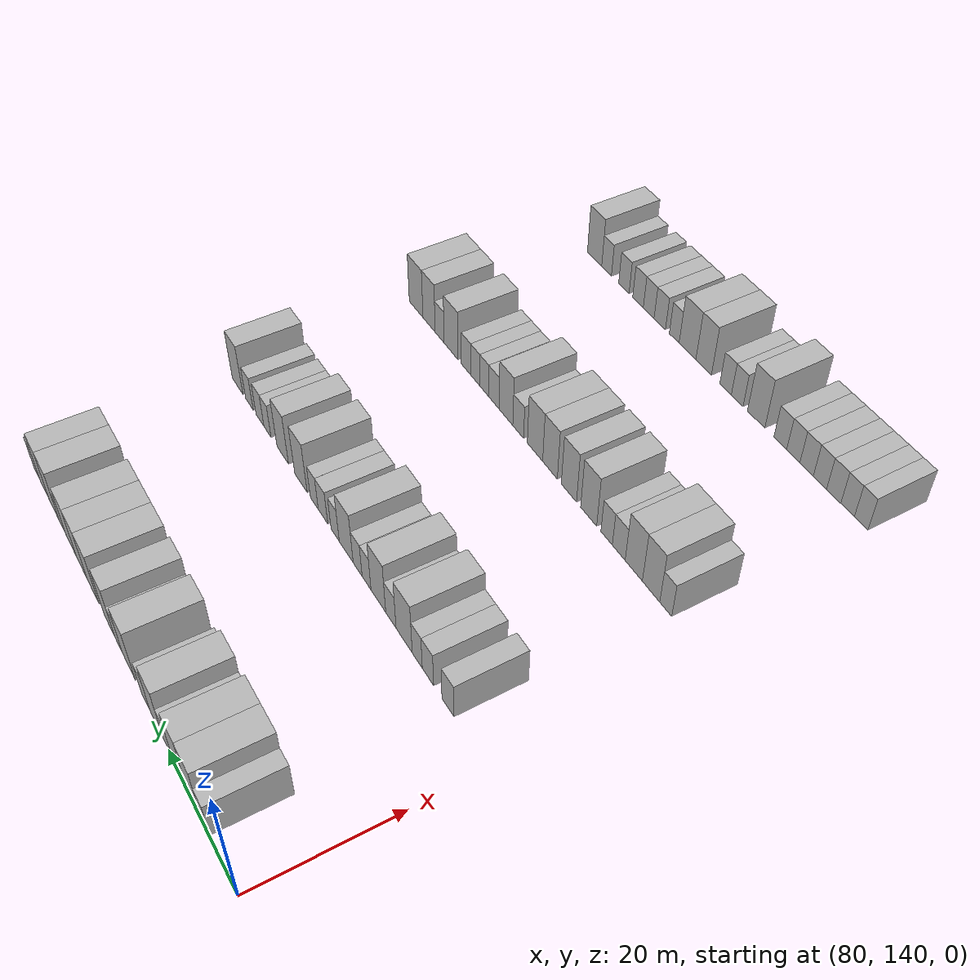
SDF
<sdf version="1.6">
 <world name="default">
  <model name="building_620">
   <static>1</static>
   <pose>85.0000 149.1270 0 0.000000 0.000000 0.000000</pose>
   <link name="link">
    <pose>0 0 3.00 0 0 0</pose>
    <collision name="collision"><geometry><box><size>10.0000 2.5076 6.0000</size></box></geometry></collision>
    <visual name="visual">
     <cast_shadows>0</cast_shadows>
     <geometry><box><size>10.0000 2.5076 6.0000</size></box></geometry>
     <material>
      <script>
       <uri>model://HANNAS_wall/materials/scripts</uri>
       <uri>model://HANNAS_wall/materials/textures</uri>
       <name>vrc/HANNAS_wall</name>
      </script>
     </material>
    </visual>
   </link>
  </model>
  <model name="building_621">
   <static>1</static>
   <pose>85.0000 152.5104 0 0.000000 0.000000 0.000000</pose>
   <link name="link">
    <pose>0 0 4.50 0 0 0</pose>
    <collision name="collision"><geometry><box><size>10.0000 4.2591 9.0000</size></box></geometry></collision>
    <visual name="visual">
     <cast_shadows>0</cast_shadows>
     <geometry><box><size>10.0000 4.2591 9.0000</size></box></geometry>
     <material>
      <script>
       <uri>model://HANNAS_wall/materials/scripts</uri>
       <uri>model://HANNAS_wall/materials/textures</uri>
       <name>vrc/HANNAS_wall</name>
      </script>
     </material>
    </visual>
   </link>
  </model>
  <model name="building_622">
   <static>1</static>
   <pose>85.0000 156.7633 0 0.000000 0.000000 0.000000</pose>
   <link name="link">
    <pose>0 0 4.50 0 0 0</pose>
    <collision name="collision"><geometry><box><size>10.0000 4.2467 9.0000</size></box></geometry></collision>
    <visual name="visual">
     <cast_shadows>0</cast_shadows>
     <geometry><box><size>10.0000 4.2467 9.0000</size></box></geometry>
     <material>
      <script>
       <uri>model://HANNAS_wall/materials/scripts</uri>
       <uri>model://HANNAS_wall/materials/textures</uri>
       <name>vrc/HANNAS_wall</name>
      </script>
     </material>
    </visual>
   </link>
  </model>
  <model name="building_623">
   <static>1</static>
   <pose>85.0000 160.2642 0 0.000000 0.000000 0.000000</pose>
   <link name="link">
    <pose>0 0 3.00 0 0 0</pose>
    <collision name="collision"><geometry><box><size>10.0000 2.7552 6.0000</size></box></geometry></collision>
    <visual name="visual">
     <cast_shadows>0</cast_shadows>
     <geometry><box><size>10.0000 2.7552 6.0000</size></box></geometry>
     <material>
      <script>
       <uri>model://HANNAS_wall/materials/scripts</uri>
       <uri>model://HANNAS_wall/materials/textures</uri>
       <name>vrc/HANNAS_wall</name>
      </script>
     </material>
    </visual>
   </link>
  </model>
  <model name="building_624">
   <static>1</static>
   <pose>85.0000 163.7320 0 0.000000 0.000000 0.000000</pose>
   <link name="link">
    <pose>0 0 4.50 0 0 0</pose>
    <collision name="collision"><geometry><box><size>10.0000 4.1804 9.0000</size></box></geometry></collision>
    <visual name="visual">
     <cast_shadows>0</cast_shadows>
     <geometry><box><size>10.0000 4.1804 9.0000</size></box></geometry>
     <material>
      <script>
       <uri>model://HANNAS_wall/materials/scripts</uri>
       <uri>model://HANNAS_wall/materials/textures</uri>
       <name>vrc/HANNAS_wall</name>
      </script>
     </material>
    </visual>
   </link>
  </model>
  <model name="building_625">
   <static>1</static>
   <pose>85.0000 167.2893 0 0.000000 0.000000 0.000000</pose>
   <link name="link">
    <pose>0 0 3.00 0 0 0</pose>
    <collision name="collision"><geometry><box><size>10.0000 2.9341 6.0000</size></box></geometry></collision>
    <visual name="visual">
     <cast_shadows>0</cast_shadows>
     <geometry><box><size>10.0000 2.9341 6.0000</size></box></geometry>
     <material>
      <script>
       <uri>model://HANNAS_wall/materials/scripts</uri>
       <uri>model://HANNAS_wall/materials/textures</uri>
       <name>vrc/HANNAS_wall</name>
      </script>
     </material>
    </visual>
   </link>
  </model>
  <model name="building_626">
   <static>1</static>
   <pose>85.0000 172.9179 0 0.000000 0.000000 0.000000</pose>
   <link name="link">
    <pose>0 0 4.50 0 0 0</pose>
    <collision name="collision"><geometry><box><size>10.0000 4.3229 9.0000</size></box></geometry></collision>
    <visual name="visual">
     <cast_shadows>0</cast_shadows>
     <geometry><box><size>10.0000 4.3229 9.0000</size></box></geometry>
     <material>
      <script>
       <uri>model://HANNAS_wall/materials/scripts</uri>
       <uri>model://HANNAS_wall/materials/textures</uri>
       <name>vrc/HANNAS_wall</name>
      </script>
     </material>
    </visual>
   </link>
  </model>
  <model name="building_627">
   <static>1</static>
   <pose>85.0000 176.4490 0 0.000000 0.000000 0.000000</pose>
   <link name="link">
    <pose>0 0 3.00 0 0 0</pose>
    <collision name="collision"><geometry><box><size>10.0000 2.7393 6.0000</size></box></geometry></collision>
    <visual name="visual">
     <cast_shadows>0</cast_shadows>
     <geometry><box><size>10.0000 2.7393 6.0000</size></box></geometry>
     <material>
      <script>
       <uri>model://HANNAS_wall/materials/scripts</uri>
       <uri>model://HANNAS_wall/materials/textures</uri>
       <name>vrc/HANNAS_wall</name>
      </script>
     </material>
    </visual>
   </link>
  </model>
  <model name="building_628">
   <static>1</static>
   <pose>85.0000 179.7100 0 0.000000 0.000000 0.000000</pose>
   <link name="link">
    <pose>0 0 4.50 0 0 0</pose>
    <collision name="collision"><geometry><box><size>10.0000 3.7828 9.0000</size></box></geometry></collision>
    <visual name="visual">
     <cast_shadows>0</cast_shadows>
     <geometry><box><size>10.0000 3.7828 9.0000</size></box></geometry>
     <material>
      <script>
       <uri>model://HANNAS_wall/materials/scripts</uri>
       <uri>model://HANNAS_wall/materials/textures</uri>
       <name>vrc/HANNAS_wall</name>
      </script>
     </material>
    </visual>
   </link>
  </model>
  <model name="building_629">
   <static>1</static>
   <pose>85.0000 185.8073 0 0.000000 0.000000 0.000000</pose>
   <link name="link">
    <pose>0 0 4.50 0 0 0</pose>
    <collision name="collision"><geometry><box><size>10.0000 4.4118 9.0000</size></box></geometry></collision>
    <visual name="visual">
     <cast_shadows>0</cast_shadows>
     <geometry><box><size>10.0000 4.4118 9.0000</size></box></geometry>
     <material>
      <script>
       <uri>model://HANNAS_wall/materials/scripts</uri>
       <uri>model://HANNAS_wall/materials/textures</uri>
       <name>vrc/HANNAS_wall</name>
      </script>
     </material>
    </visual>
   </link>
  </model>
  <model name="building_630">
   <static>1</static>
   <pose>85.0000 190.1214 0 0.000000 0.000000 0.000000</pose>
   <link name="link">
    <pose>0 0 4.50 0 0 0</pose>
    <collision name="collision"><geometry><box><size>10.0000 4.2162 9.0000</size></box></geometry></collision>
    <visual name="visual">
     <cast_shadows>0</cast_shadows>
     <geometry><box><size>10.0000 4.2162 9.0000</size></box></geometry>
     <material>
      <script>
       <uri>model://HANNAS_wall/materials/scripts</uri>
       <uri>model://HANNAS_wall/materials/textures</uri>
       <name>vrc/HANNAS_wall</name>
      </script>
     </material>
    </visual>
   </link>
  </model>
  <model name="building_631">
   <static>1</static>
   <pose>85.0000 194.3150 0 0.000000 0.000000 0.000000</pose>
   <link name="link">
    <pose>0 0 4.50 0 0 0</pose>
    <collision name="collision"><geometry><box><size>10.0000 4.1710 9.0000</size></box></geometry></collision>
    <visual name="visual">
     <cast_shadows>0</cast_shadows>
     <geometry><box><size>10.0000 4.1710 9.0000</size></box></geometry>
     <material>
      <script>
       <uri>model://HANNAS_wall/materials/scripts</uri>
       <uri>model://HANNAS_wall/materials/textures</uri>
       <name>vrc/HANNAS_wall</name>
      </script>
     </material>
    </visual>
   </link>
  </model>
  <model name="building_632">
   <static>1</static>
   <pose>85.0000 197.7149 0 0.000000 0.000000 0.000000</pose>
   <link name="link">
    <pose>0 0 3.00 0 0 0</pose>
    <collision name="collision"><geometry><box><size>10.0000 2.6288 6.0000</size></box></geometry></collision>
    <visual name="visual">
     <cast_shadows>0</cast_shadows>
     <geometry><box><size>10.0000 2.6288 6.0000</size></box></geometry>
     <material>
      <script>
       <uri>model://HANNAS_wall/materials/scripts</uri>
       <uri>model://HANNAS_wall/materials/textures</uri>
       <name>vrc/HANNAS_wall</name>
      </script>
     </material>
    </visual>
   </link>
  </model>
  <model name="building_633">
   <static>1</static>
   <pose>85.0000 201.2180 0 0.000000 0.000000 0.000000</pose>
   <link name="link">
    <pose>0 0 4.50 0 0 0</pose>
    <collision name="collision"><geometry><box><size>10.0000 4.3775 9.0000</size></box></geometry></collision>
    <visual name="visual">
     <cast_shadows>0</cast_shadows>
     <geometry><box><size>10.0000 4.3775 9.0000</size></box></geometry>
     <material>
      <script>
       <uri>model://HANNAS_wall/materials/scripts</uri>
       <uri>model://HANNAS_wall/materials/textures</uri>
       <name>vrc/HANNAS_wall</name>
      </script>
     </material>
    </visual>
   </link>
  </model>
  <model name="building_634">
   <static>1</static>
   <pose>85.0000 205.3237 0 0.000000 0.000000 0.000000</pose>
   <link name="link">
    <pose>0 0 4.50 0 0 0</pose>
    <collision name="collision"><geometry><box><size>10.0000 3.8339 9.0000</size></box></geometry></collision>
    <visual name="visual">
     <cast_shadows>0</cast_shadows>
     <geometry><box><size>10.0000 3.8339 9.0000</size></box></geometry>
     <material>
      <script>
       <uri>model://HANNAS_wall/materials/scripts</uri>
       <uri>model://HANNAS_wall/materials/textures</uri>
       <name>vrc/HANNAS_wall</name>
      </script>
     </material>
    </visual>
   </link>
  </model>
  <model name="building_635">
   <static>1</static>
   <pose>85.0000 208.5899 0 0.000000 0.000000 0.000000</pose>
   <link name="link">
    <pose>0 0 3.00 0 0 0</pose>
    <collision name="collision"><geometry><box><size>10.0000 2.6985 6.0000</size></box></geometry></collision>
    <visual name="visual">
     <cast_shadows>0</cast_shadows>
     <geometry><box><size>10.0000 2.6985 6.0000</size></box></geometry>
     <material>
      <script>
       <uri>model://HANNAS_wall/materials/scripts</uri>
       <uri>model://HANNAS_wall/materials/textures</uri>
       <name>vrc/HANNAS_wall</name>
      </script>
     </material>
    </visual>
   </link>
  </model>
  <model name="building_860">
   <static>1</static>
   <pose>115.0000 149.2882 0 0.000000 0.000000 0.000000</pose>
   <link name="link">
    <pose>0 0 3.00 0 0 0</pose>
    <collision name="collision"><geometry><box><size>10.0000 2.8849 6.0000</size></box></geometry></collision>
    <visual name="visual">
     <cast_shadows>0</cast_shadows>
     <geometry><box><size>10.0000 2.8849 6.0000</size></box></geometry>
     <material>
      <script>
       <uri>model://HANNAS_wall/materials/scripts</uri>
       <uri>model://HANNAS_wall/materials/textures</uri>
       <name>vrc/HANNAS_wall</name>
      </script>
     </material>
    </visual>
   </link>
  </model>
  <model name="building_861">
   <static>1</static>
   <pose>115.0000 154.1398 0 0.000000 0.000000 0.000000</pose>
   <link name="link">
    <pose>0 0 3.00 0 0 0</pose>
    <collision name="collision"><geometry><box><size>10.0000 2.8182 6.0000</size></box></geometry></collision>
    <visual name="visual">
     <cast_shadows>0</cast_shadows>
     <geometry><box><size>10.0000 2.8182 6.0000</size></box></geometry>
     <material>
      <script>
       <uri>model://HANNAS_wall/materials/scripts</uri>
       <uri>model://HANNAS_wall/materials/textures</uri>
       <name>vrc/HANNAS_wall</name>
      </script>
     </material>
    </visual>
   </link>
  </model>
  <model name="building_862">
   <static>1</static>
   <pose>115.0000 156.8066 0 0.000000 0.000000 0.000000</pose>
   <link name="link">
    <pose>0 0 3.00 0 0 0</pose>
    <collision name="collision"><geometry><box><size>10.0000 2.5155 6.0000</size></box></geometry></collision>
    <visual name="visual">
     <cast_shadows>0</cast_shadows>
     <geometry><box><size>10.0000 2.5155 6.0000</size></box></geometry>
     <material>
      <script>
       <uri>model://HANNAS_wall/materials/scripts</uri>
       <uri>model://HANNAS_wall/materials/textures</uri>
       <name>vrc/HANNAS_wall</name>
      </script>
     </material>
    </visual>
   </link>
  </model>
  <model name="building_863">
   <static>1</static>
   <pose>115.0000 160.1584 0 0.000000 0.000000 0.000000</pose>
   <link name="link">
    <pose>0 0 4.50 0 0 0</pose>
    <collision name="collision"><geometry><box><size>10.0000 4.1881 9.0000</size></box></geometry></collision>
    <visual name="visual">
     <cast_shadows>0</cast_shadows>
     <geometry><box><size>10.0000 4.1881 9.0000</size></box></geometry>
     <material>
      <script>
       <uri>model://HANNAS_wall/materials/scripts</uri>
       <uri>model://HANNAS_wall/materials/textures</uri>
       <name>vrc/HANNAS_wall</name>
      </script>
     </material>
    </visual>
   </link>
  </model>
  <model name="building_864">
   <static>1</static>
   <pose>115.0000 163.6179 0 0.000000 0.000000 0.000000</pose>
   <link name="link">
    <pose>0 0 3.00 0 0 0</pose>
    <collision name="collision"><geometry><box><size>10.0000 2.7309 6.0000</size></box></geometry></collision>
    <visual name="visual">
     <cast_shadows>0</cast_shadows>
     <geometry><box><size>10.0000 2.7309 6.0000</size></box></geometry>
     <material>
      <script>
       <uri>model://HANNAS_wall/materials/scripts</uri>
       <uri>model://HANNAS_wall/materials/textures</uri>
       <name>vrc/HANNAS_wall</name>
      </script>
     </material>
    </visual>
   </link>
  </model>
  <model name="building_865">
   <static>1</static>
   <pose>115.0000 166.9807 0 0.000000 0.000000 0.000000</pose>
   <link name="link">
    <pose>0 0 4.50 0 0 0</pose>
    <collision name="collision"><geometry><box><size>10.0000 3.9947 9.0000</size></box></geometry></collision>
    <visual name="visual">
     <cast_shadows>0</cast_shadows>
     <geometry><box><size>10.0000 3.9947 9.0000</size></box></geometry>
     <material>
      <script>
       <uri>model://HANNAS_wall/materials/scripts</uri>
       <uri>model://HANNAS_wall/materials/textures</uri>
       <name>vrc/HANNAS_wall</name>
      </script>
     </material>
    </visual>
   </link>
  </model>
  <model name="building_866">
   <static>1</static>
   <pose>115.0000 170.2140 0 0.000000 0.000000 0.000000</pose>
   <link name="link">
    <pose>0 0 3.00 0 0 0</pose>
    <collision name="collision"><geometry><box><size>10.0000 2.4719 6.0000</size></box></geometry></collision>
    <visual name="visual">
     <cast_shadows>0</cast_shadows>
     <geometry><box><size>10.0000 2.4719 6.0000</size></box></geometry>
     <material>
      <script>
       <uri>model://HANNAS_wall/materials/scripts</uri>
       <uri>model://HANNAS_wall/materials/textures</uri>
       <name>vrc/HANNAS_wall</name>
      </script>
     </material>
    </visual>
   </link>
  </model>
  <model name="building_867">
   <static>1</static>
   <pose>115.0000 172.7153 0 0.000000 0.000000 0.000000</pose>
   <link name="link">
    <pose>0 0 3.00 0 0 0</pose>
    <collision name="collision"><geometry><box><size>10.0000 2.5305 6.0000</size></box></geometry></collision>
    <visual name="visual">
     <cast_shadows>0</cast_shadows>
     <geometry><box><size>10.0000 2.5305 6.0000</size></box></geometry>
     <material>
      <script>
       <uri>model://HANNAS_wall/materials/scripts</uri>
       <uri>model://HANNAS_wall/materials/textures</uri>
       <name>vrc/HANNAS_wall</name>
      </script>
     </material>
    </visual>
   </link>
  </model>
  <model name="building_868">
   <static>1</static>
   <pose>115.0000 175.9908 0 0.000000 0.000000 0.000000</pose>
   <link name="link">
    <pose>0 0 4.50 0 0 0</pose>
    <collision name="collision"><geometry><box><size>10.0000 4.0206 9.0000</size></box></geometry></collision>
    <visual name="visual">
     <cast_shadows>0</cast_shadows>
     <geometry><box><size>10.0000 4.0206 9.0000</size></box></geometry>
     <material>
      <script>
       <uri>model://HANNAS_wall/materials/scripts</uri>
       <uri>model://HANNAS_wall/materials/textures</uri>
       <name>vrc/HANNAS_wall</name>
      </script>
     </material>
    </visual>
   </link>
  </model>
  <model name="building_869">
   <static>1</static>
   <pose>115.0000 179.2040 0 0.000000 0.000000 0.000000</pose>
   <link name="link">
    <pose>0 0 3.00 0 0 0</pose>
    <collision name="collision"><geometry><box><size>10.0000 2.4058 6.0000</size></box></geometry></collision>
    <visual name="visual">
     <cast_shadows>0</cast_shadows>
     <geometry><box><size>10.0000 2.4058 6.0000</size></box></geometry>
     <material>
      <script>
       <uri>model://HANNAS_wall/materials/scripts</uri>
       <uri>model://HANNAS_wall/materials/textures</uri>
       <name>vrc/HANNAS_wall</name>
      </script>
     </material>
    </visual>
   </link>
  </model>
  <model name="building_870">
   <static>1</static>
   <pose>115.0000 182.8439 0 0.000000 0.000000 0.000000</pose>
   <link name="link">
    <pose>0 0 3.00 0 0 0</pose>
    <collision name="collision"><geometry><box><size>10.0000 2.8740 6.0000</size></box></geometry></collision>
    <visual name="visual">
     <cast_shadows>0</cast_shadows>
     <geometry><box><size>10.0000 2.8740 6.0000</size></box></geometry>
     <material>
      <script>
       <uri>model://HANNAS_wall/materials/scripts</uri>
       <uri>model://HANNAS_wall/materials/textures</uri>
       <name>vrc/HANNAS_wall</name>
      </script>
     </material>
    </visual>
   </link>
  </model>
  <model name="building_871">
   <static>1</static>
   <pose>115.0000 185.4899 0 0.000000 0.000000 0.000000</pose>
   <link name="link">
    <pose>0 0 3.00 0 0 0</pose>
    <collision name="collision"><geometry><box><size>10.0000 2.4179 6.0000</size></box></geometry></collision>
    <visual name="visual">
     <cast_shadows>0</cast_shadows>
     <geometry><box><size>10.0000 2.4179 6.0000</size></box></geometry>
     <material>
      <script>
       <uri>model://HANNAS_wall/materials/scripts</uri>
       <uri>model://HANNAS_wall/materials/textures</uri>
       <name>vrc/HANNAS_wall</name>
      </script>
     </material>
    </visual>
   </link>
  </model>
  <model name="building_872">
   <static>1</static>
   <pose>115.0000 189.6766 0 0.000000 0.000000 0.000000</pose>
   <link name="link">
    <pose>0 0 4.50 0 0 0</pose>
    <collision name="collision"><geometry><box><size>10.0000 3.9555 9.0000</size></box></geometry></collision>
    <visual name="visual">
     <cast_shadows>0</cast_shadows>
     <geometry><box><size>10.0000 3.9555 9.0000</size></box></geometry>
     <material>
      <script>
       <uri>model://HANNAS_wall/materials/scripts</uri>
       <uri>model://HANNAS_wall/materials/textures</uri>
       <name>vrc/HANNAS_wall</name>
      </script>
     </material>
    </visual>
   </link>
  </model>
  <model name="building_873">
   <static>1</static>
   <pose>115.0000 195.5539 0 0.000000 0.000000 0.000000</pose>
   <link name="link">
    <pose>0 0 4.50 0 0 0</pose>
    <collision name="collision"><geometry><box><size>10.0000 3.7991 9.0000</size></box></geometry></collision>
    <visual name="visual">
     <cast_shadows>0</cast_shadows>
     <geometry><box><size>10.0000 3.7991 9.0000</size></box></geometry>
     <material>
      <script>
       <uri>model://HANNAS_wall/materials/scripts</uri>
       <uri>model://HANNAS_wall/materials/textures</uri>
       <name>vrc/HANNAS_wall</name>
      </script>
     </material>
    </visual>
   </link>
  </model>
  <model name="building_874">
   <static>1</static>
   <pose>115.0000 200.6621 0 0.000000 0.000000 0.000000</pose>
   <link name="link">
    <pose>0 0 3.00 0 0 0</pose>
    <collision name="collision"><geometry><box><size>10.0000 2.4171 6.0000</size></box></geometry></collision>
    <visual name="visual">
     <cast_shadows>0</cast_shadows>
     <geometry><box><size>10.0000 2.4171 6.0000</size></box></geometry>
     <material>
      <script>
       <uri>model://HANNAS_wall/materials/scripts</uri>
       <uri>model://HANNAS_wall/materials/textures</uri>
       <name>vrc/HANNAS_wall</name>
      </script>
     </material>
    </visual>
   </link>
  </model>
  <model name="building_875">
   <static>1</static>
   <pose>115.0000 203.2262 0 0.000000 0.000000 0.000000</pose>
   <link name="link">
    <pose>0 0 3.00 0 0 0</pose>
    <collision name="collision"><geometry><box><size>10.0000 2.7111 6.0000</size></box></geometry></collision>
    <visual name="visual">
     <cast_shadows>0</cast_shadows>
     <geometry><box><size>10.0000 2.7111 6.0000</size></box></geometry>
     <material>
      <script>
       <uri>model://HANNAS_wall/materials/scripts</uri>
       <uri>model://HANNAS_wall/materials/textures</uri>
       <name>vrc/HANNAS_wall</name>
      </script>
     </material>
    </visual>
   </link>
  </model>
  <model name="building_876">
   <static>1</static>
   <pose>115.0000 206.9170 0 0.000000 0.000000 0.000000</pose>
   <link name="link">
    <pose>0 0 3.00 0 0 0</pose>
    <collision name="collision"><geometry><box><size>10.0000 2.6705 6.0000</size></box></geometry></collision>
    <visual name="visual">
     <cast_shadows>0</cast_shadows>
     <geometry><box><size>10.0000 2.6705 6.0000</size></box></geometry>
     <material>
      <script>
       <uri>model://HANNAS_wall/materials/scripts</uri>
       <uri>model://HANNAS_wall/materials/textures</uri>
       <name>vrc/HANNAS_wall</name>
      </script>
     </material>
    </visual>
   </link>
  </model>
  <model name="building_877">
   <static>1</static>
   <pose>115.0000 211.1605 0 0.000000 0.000000 0.000000</pose>
   <link name="link">
    <pose>0 0 4.50 0 0 0</pose>
    <collision name="collision"><geometry><box><size>10.0000 3.8165 9.0000</size></box></geometry></collision>
    <visual name="visual">
     <cast_shadows>0</cast_shadows>
     <geometry><box><size>10.0000 3.8165 9.0000</size></box></geometry>
     <material>
      <script>
       <uri>model://HANNAS_wall/materials/scripts</uri>
       <uri>model://HANNAS_wall/materials/textures</uri>
       <name>vrc/HANNAS_wall</name>
      </script>
     </material>
    </visual>
   </link>
  </model>
  <model name="building_1081">
   <static>1</static>
   <pose>145.0000 148.4173 0 0.000000 0.000000 0.000000</pose>
   <link name="link">
    <pose>0 0 3.00 0 0 0</pose>
    <collision name="collision"><geometry><box><size>10.0000 2.5386 6.0000</size></box></geometry></collision>
    <visual name="visual">
     <cast_shadows>0</cast_shadows>
     <geometry><box><size>10.0000 2.5386 6.0000</size></box></geometry>
     <material>
      <script>
       <uri>model://HANNAS_wall/materials/scripts</uri>
       <uri>model://HANNAS_wall/materials/textures</uri>
       <name>vrc/HANNAS_wall</name>
      </script>
     </material>
    </visual>
   </link>
  </model>
  <model name="building_1082">
   <static>1</static>
   <pose>145.0000 151.5615 0 0.000000 0.000000 0.000000</pose>
   <link name="link">
    <pose>0 0 4.50 0 0 0</pose>
    <collision name="collision"><geometry><box><size>10.0000 3.7497 9.0000</size></box></geometry></collision>
    <visual name="visual">
     <cast_shadows>0</cast_shadows>
     <geometry><box><size>10.0000 3.7497 9.0000</size></box></geometry>
     <material>
      <script>
       <uri>model://HANNAS_wall/materials/scripts</uri>
       <uri>model://HANNAS_wall/materials/textures</uri>
       <name>vrc/HANNAS_wall</name>
      </script>
     </material>
    </visual>
   </link>
  </model>
  <model name="building_1083">
   <static>1</static>
   <pose>145.0000 155.3488 0 0.000000 0.000000 0.000000</pose>
   <link name="link">
    <pose>0 0 4.50 0 0 0</pose>
    <collision name="collision"><geometry><box><size>10.0000 3.8248 9.0000</size></box></geometry></collision>
    <visual name="visual">
     <cast_shadows>0</cast_shadows>
     <geometry><box><size>10.0000 3.8248 9.0000</size></box></geometry>
     <material>
      <script>
       <uri>model://HANNAS_wall/materials/scripts</uri>
       <uri>model://HANNAS_wall/materials/textures</uri>
       <name>vrc/HANNAS_wall</name>
      </script>
     </material>
    </visual>
   </link>
  </model>
  <model name="building_1084">
   <static>1</static>
   <pose>145.0000 158.7180 0 0.000000 0.000000 0.000000</pose>
   <link name="link">
    <pose>0 0 3.00 0 0 0</pose>
    <collision name="collision"><geometry><box><size>10.0000 2.9135 6.0000</size></box></geometry></collision>
    <visual name="visual">
     <cast_shadows>0</cast_shadows>
     <geometry><box><size>10.0000 2.9135 6.0000</size></box></geometry>
     <material>
      <script>
       <uri>model://HANNAS_wall/materials/scripts</uri>
       <uri>model://HANNAS_wall/materials/textures</uri>
       <name>vrc/HANNAS_wall</name>
      </script>
     </material>
    </visual>
   </link>
  </model>
  <model name="building_1085">
   <static>1</static>
   <pose>145.0000 161.4958 0 0.000000 0.000000 0.000000</pose>
   <link name="link">
    <pose>0 0 3.00 0 0 0</pose>
    <collision name="collision"><geometry><box><size>10.0000 2.6422 6.0000</size></box></geometry></collision>
    <visual name="visual">
     <cast_shadows>0</cast_shadows>
     <geometry><box><size>10.0000 2.6422 6.0000</size></box></geometry>
     <material>
      <script>
       <uri>model://HANNAS_wall/materials/scripts</uri>
       <uri>model://HANNAS_wall/materials/textures</uri>
       <name>vrc/HANNAS_wall</name>
      </script>
     </material>
    </visual>
   </link>
  </model>
  <model name="building_1086">
   <static>1</static>
   <pose>145.0000 165.7236 0 0.000000 0.000000 0.000000</pose>
   <link name="link">
    <pose>0 0 4.50 0 0 0</pose>
    <collision name="collision"><geometry><box><size>10.0000 3.8134 9.0000</size></box></geometry></collision>
    <visual name="visual">
     <cast_shadows>0</cast_shadows>
     <geometry><box><size>10.0000 3.8134 9.0000</size></box></geometry>
     <material>
      <script>
       <uri>model://HANNAS_wall/materials/scripts</uri>
       <uri>model://HANNAS_wall/materials/textures</uri>
       <name>vrc/HANNAS_wall</name>
      </script>
     </material>
    </visual>
   </link>
  </model>
  <model name="building_1087">
   <static>1</static>
   <pose>145.0000 170.4979 0 0.000000 0.000000 0.000000</pose>
   <link name="link">
    <pose>0 0 4.50 0 0 0</pose>
    <collision name="collision"><geometry><box><size>10.0000 3.7352 9.0000</size></box></geometry></collision>
    <visual name="visual">
     <cast_shadows>0</cast_shadows>
     <geometry><box><size>10.0000 3.7352 9.0000</size></box></geometry>
     <material>
      <script>
       <uri>model://HANNAS_wall/materials/scripts</uri>
       <uri>model://HANNAS_wall/materials/textures</uri>
       <name>vrc/HANNAS_wall</name>
      </script>
     </material>
    </visual>
   </link>
  </model>
  <model name="building_1088">
   <static>1</static>
   <pose>145.0000 175.2253 0 0.000000 0.000000 0.000000</pose>
   <link name="link">
    <pose>0 0 4.50 0 0 0</pose>
    <collision name="collision"><geometry><box><size>10.0000 3.7195 9.0000</size></box></geometry></collision>
    <visual name="visual">
     <cast_shadows>0</cast_shadows>
     <geometry><box><size>10.0000 3.7195 9.0000</size></box></geometry>
     <material>
      <script>
       <uri>model://HANNAS_wall/materials/scripts</uri>
       <uri>model://HANNAS_wall/materials/textures</uri>
       <name>vrc/HANNAS_wall</name>
      </script>
     </material>
    </visual>
   </link>
  </model>
  <model name="building_1089">
   <static>1</static>
   <pose>145.0000 179.0770 0 0.000000 0.000000 0.000000</pose>
   <link name="link">
    <pose>0 0 4.50 0 0 0</pose>
    <collision name="collision"><geometry><box><size>10.0000 3.9839 9.0000</size></box></geometry></collision>
    <visual name="visual">
     <cast_shadows>0</cast_shadows>
     <geometry><box><size>10.0000 3.9839 9.0000</size></box></geometry>
     <material>
      <script>
       <uri>model://HANNAS_wall/materials/scripts</uri>
       <uri>model://HANNAS_wall/materials/textures</uri>
       <name>vrc/HANNAS_wall</name>
      </script>
     </material>
    </visual>
   </link>
  </model>
  <model name="building_1090">
   <static>1</static>
   <pose>145.0000 183.5086 0 0.000000 0.000000 0.000000</pose>
   <link name="link">
    <pose>0 0 3.00 0 0 0</pose>
    <collision name="collision"><geometry><box><size>10.0000 2.8792 6.0000</size></box></geometry></collision>
    <visual name="visual">
     <cast_shadows>0</cast_shadows>
     <geometry><box><size>10.0000 2.8792 6.0000</size></box></geometry>
     <material>
      <script>
       <uri>model://HANNAS_wall/materials/scripts</uri>
       <uri>model://HANNAS_wall/materials/textures</uri>
       <name>vrc/HANNAS_wall</name>
      </script>
     </material>
    </visual>
   </link>
  </model>
  <model name="building_1091">
   <static>1</static>
   <pose>145.0000 186.8395 0 0.000000 0.000000 0.000000</pose>
   <link name="link">
    <pose>0 0 4.50 0 0 0</pose>
    <collision name="collision"><geometry><box><size>10.0000 3.7826 9.0000</size></box></geometry></collision>
    <visual name="visual">
     <cast_shadows>0</cast_shadows>
     <geometry><box><size>10.0000 3.7826 9.0000</size></box></geometry>
     <material>
      <script>
       <uri>model://HANNAS_wall/materials/scripts</uri>
       <uri>model://HANNAS_wall/materials/textures</uri>
       <name>vrc/HANNAS_wall</name>
      </script>
     </material>
    </visual>
   </link>
  </model>
  <model name="building_1092">
   <static>1</static>
   <pose>145.0000 190.1823 0 0.000000 0.000000 0.000000</pose>
   <link name="link">
    <pose>0 0 3.00 0 0 0</pose>
    <collision name="collision"><geometry><box><size>10.0000 2.9030 6.0000</size></box></geometry></collision>
    <visual name="visual">
     <cast_shadows>0</cast_shadows>
     <geometry><box><size>10.0000 2.9030 6.0000</size></box></geometry>
     <material>
      <script>
       <uri>model://HANNAS_wall/materials/scripts</uri>
       <uri>model://HANNAS_wall/materials/textures</uri>
       <name>vrc/HANNAS_wall</name>
      </script>
     </material>
    </visual>
   </link>
  </model>
  <model name="building_1093">
   <static>1</static>
   <pose>145.0000 192.9009 0 0.000000 0.000000 0.000000</pose>
   <link name="link">
    <pose>0 0 3.00 0 0 0</pose>
    <collision name="collision"><geometry><box><size>10.0000 2.5343 6.0000</size></box></geometry></collision>
    <visual name="visual">
     <cast_shadows>0</cast_shadows>
     <geometry><box><size>10.0000 2.5343 6.0000</size></box></geometry>
     <material>
      <script>
       <uri>model://HANNAS_wall/materials/scripts</uri>
       <uri>model://HANNAS_wall/materials/textures</uri>
       <name>vrc/HANNAS_wall</name>
      </script>
     </material>
    </visual>
   </link>
  </model>
  <model name="building_1094">
   <static>1</static>
   <pose>145.0000 195.4514 0 0.000000 0.000000 0.000000</pose>
   <link name="link">
    <pose>0 0 3.00 0 0 0</pose>
    <collision name="collision"><geometry><box><size>10.0000 2.5667 6.0000</size></box></geometry></collision>
    <visual name="visual">
     <cast_shadows>0</cast_shadows>
     <geometry><box><size>10.0000 2.5667 6.0000</size></box></geometry>
     <material>
      <script>
       <uri>model://HANNAS_wall/materials/scripts</uri>
       <uri>model://HANNAS_wall/materials/textures</uri>
       <name>vrc/HANNAS_wall</name>
      </script>
     </material>
    </visual>
   </link>
  </model>
  <model name="building_1095">
   <static>1</static>
   <pose>145.0000 198.1159 0 0.000000 0.000000 0.000000</pose>
   <link name="link">
    <pose>0 0 3.00 0 0 0</pose>
    <collision name="collision"><geometry><box><size>10.0000 2.7623 6.0000</size></box></geometry></collision>
    <visual name="visual">
     <cast_shadows>0</cast_shadows>
     <geometry><box><size>10.0000 2.7623 6.0000</size></box></geometry>
     <material>
      <script>
       <uri>model://HANNAS_wall/materials/scripts</uri>
       <uri>model://HANNAS_wall/materials/textures</uri>
       <name>vrc/HANNAS_wall</name>
      </script>
     </material>
    </visual>
   </link>
  </model>
  <model name="building_1096">
   <static>1</static>
   <pose>145.0000 202.5630 0 0.000000 0.000000 0.000000</pose>
   <link name="link">
    <pose>0 0 4.50 0 0 0</pose>
    <collision name="collision"><geometry><box><size>10.0000 4.1319 9.0000</size></box></geometry></collision>
    <visual name="visual">
     <cast_shadows>0</cast_shadows>
     <geometry><box><size>10.0000 4.1319 9.0000</size></box></geometry>
     <material>
      <script>
       <uri>model://HANNAS_wall/materials/scripts</uri>
       <uri>model://HANNAS_wall/materials/textures</uri>
       <name>vrc/HANNAS_wall</name>
      </script>
     </material>
    </visual>
   </link>
  </model>
  <model name="building_1097">
   <static>1</static>
   <pose>145.0000 206.0150 0 0.000000 0.000000 0.000000</pose>
   <link name="link">
    <pose>0 0 3.00 0 0 0</pose>
    <collision name="collision"><geometry><box><size>10.0000 2.7720 6.0000</size></box></geometry></collision>
    <visual name="visual">
     <cast_shadows>0</cast_shadows>
     <geometry><box><size>10.0000 2.7720 6.0000</size></box></geometry>
     <material>
      <script>
       <uri>model://HANNAS_wall/materials/scripts</uri>
       <uri>model://HANNAS_wall/materials/textures</uri>
       <name>vrc/HANNAS_wall</name>
      </script>
     </material>
    </visual>
   </link>
  </model>
  <model name="building_1098">
   <static>1</static>
   <pose>145.0000 209.3118 0 0.000000 0.000000 0.000000</pose>
   <link name="link">
    <pose>0 0 4.50 0 0 0</pose>
    <collision name="collision"><geometry><box><size>10.0000 3.8217 9.0000</size></box></geometry></collision>
    <visual name="visual">
     <cast_shadows>0</cast_shadows>
     <geometry><box><size>10.0000 3.8217 9.0000</size></box></geometry>
     <material>
      <script>
       <uri>model://HANNAS_wall/materials/scripts</uri>
       <uri>model://HANNAS_wall/materials/textures</uri>
       <name>vrc/HANNAS_wall</name>
      </script>
     </material>
    </visual>
   </link>
  </model>
  <model name="building_1099">
   <static>1</static>
   <pose>145.0000 213.4184 0 0.000000 0.000000 0.000000</pose>
   <link name="link">
    <pose>0 0 4.50 0 0 0</pose>
    <collision name="collision"><geometry><box><size>10.0000 4.3914 9.0000</size></box></geometry></collision>
    <visual name="visual">
     <cast_shadows>0</cast_shadows>
     <geometry><box><size>10.0000 4.3914 9.0000</size></box></geometry>
     <material>
      <script>
       <uri>model://HANNAS_wall/materials/scripts</uri>
       <uri>model://HANNAS_wall/materials/textures</uri>
       <name>vrc/HANNAS_wall</name>
      </script>
     </material>
    </visual>
   </link>
  </model>
  <model name="building_1296">
   <static>1</static>
   <pose>175.0000 147.2156 0 0.000000 0.000000 0.000000</pose>
   <link name="link">
    <pose>0 0 3.00 0 0 0</pose>
    <collision name="collision"><geometry><box><size>10.0000 2.6299 6.0000</size></box></geometry></collision>
    <visual name="visual">
     <cast_shadows>0</cast_shadows>
     <geometry><box><size>10.0000 2.6299 6.0000</size></box></geometry>
     <material>
      <script>
       <uri>model://HANNAS_wall/materials/scripts</uri>
       <uri>model://HANNAS_wall/materials/textures</uri>
       <name>vrc/HANNAS_wall</name>
      </script>
     </material>
    </visual>
   </link>
  </model>
  <model name="building_1297">
   <static>1</static>
   <pose>175.0000 149.8735 0 0.000000 0.000000 0.000000</pose>
   <link name="link">
    <pose>0 0 3.00 0 0 0</pose>
    <collision name="collision"><geometry><box><size>10.0000 2.6858 6.0000</size></box></geometry></collision>
    <visual name="visual">
     <cast_shadows>0</cast_shadows>
     <geometry><box><size>10.0000 2.6858 6.0000</size></box></geometry>
     <material>
      <script>
       <uri>model://HANNAS_wall/materials/scripts</uri>
       <uri>model://HANNAS_wall/materials/textures</uri>
       <name>vrc/HANNAS_wall</name>
      </script>
     </material>
    </visual>
   </link>
  </model>
  <model name="building_1298">
   <static>1</static>
   <pose>175.0000 152.6501 0 0.000000 0.000000 0.000000</pose>
   <link name="link">
    <pose>0 0 3.00 0 0 0</pose>
    <collision name="collision"><geometry><box><size>10.0000 2.8673 6.0000</size></box></geometry></collision>
    <visual name="visual">
     <cast_shadows>0</cast_shadows>
     <geometry><box><size>10.0000 2.8673 6.0000</size></box></geometry>
     <material>
      <script>
       <uri>model://HANNAS_wall/materials/scripts</uri>
       <uri>model://HANNAS_wall/materials/textures</uri>
       <name>vrc/HANNAS_wall</name>
      </script>
     </material>
    </visual>
   </link>
  </model>
  <model name="building_1299">
   <static>1</static>
   <pose>175.0000 155.4488 0 0.000000 0.000000 0.000000</pose>
   <link name="link">
    <pose>0 0 3.00 0 0 0</pose>
    <collision name="collision"><geometry><box><size>10.0000 2.7303 6.0000</size></box></geometry></collision>
    <visual name="visual">
     <cast_shadows>0</cast_shadows>
     <geometry><box><size>10.0000 2.7303 6.0000</size></box></geometry>
     <material>
      <script>
       <uri>model://HANNAS_wall/materials/scripts</uri>
       <uri>model://HANNAS_wall/materials/textures</uri>
       <name>vrc/HANNAS_wall</name>
      </script>
     </material>
    </visual>
   </link>
  </model>
  <model name="building_1300">
   <static>1</static>
   <pose>175.0000 158.2220 0 0.000000 0.000000 0.000000</pose>
   <link name="link">
    <pose>0 0 3.00 0 0 0</pose>
    <collision name="collision"><geometry><box><size>10.0000 2.8161 6.0000</size></box></geometry></collision>
    <visual name="visual">
     <cast_shadows>0</cast_shadows>
     <geometry><box><size>10.0000 2.8161 6.0000</size></box></geometry>
     <material>
      <script>
       <uri>model://HANNAS_wall/materials/scripts</uri>
       <uri>model://HANNAS_wall/materials/textures</uri>
       <name>vrc/HANNAS_wall</name>
      </script>
     </material>
    </visual>
   </link>
  </model>
  <model name="building_1301">
   <static>1</static>
   <pose>175.0000 161.0381 0 0.000000 0.000000 0.000000</pose>
   <link name="link">
    <pose>0 0 3.00 0 0 0</pose>
    <collision name="collision"><geometry><box><size>10.0000 2.8159 6.0000</size></box></geometry></collision>
    <visual name="visual">
     <cast_shadows>0</cast_shadows>
     <geometry><box><size>10.0000 2.8159 6.0000</size></box></geometry>
     <material>
      <script>
       <uri>model://HANNAS_wall/materials/scripts</uri>
       <uri>model://HANNAS_wall/materials/textures</uri>
       <name>vrc/HANNAS_wall</name>
      </script>
     </material>
    </visual>
   </link>
  </model>
  <model name="building_1302">
   <static>1</static>
   <pose>175.0000 163.8328 0 0.000000 0.000000 0.000000</pose>
   <link name="link">
    <pose>0 0 3.00 0 0 0</pose>
    <collision name="collision"><geometry><box><size>10.0000 2.7735 6.0000</size></box></geometry></collision>
    <visual name="visual">
     <cast_shadows>0</cast_shadows>
     <geometry><box><size>10.0000 2.7735 6.0000</size></box></geometry>
     <material>
      <script>
       <uri>model://HANNAS_wall/materials/scripts</uri>
       <uri>model://HANNAS_wall/materials/textures</uri>
       <name>vrc/HANNAS_wall</name>
      </script>
     </material>
    </visual>
   </link>
  </model>
  <model name="building_1303">
   <static>1</static>
   <pose>175.0000 169.1736 0 0.000000 0.000000 0.000000</pose>
   <link name="link">
    <pose>0 0 4.50 0 0 0</pose>
    <collision name="collision"><geometry><box><size>10.0000 3.9081 9.0000</size></box></geometry></collision>
    <visual name="visual">
     <cast_shadows>0</cast_shadows>
     <geometry><box><size>10.0000 3.9081 9.0000</size></box></geometry>
     <material>
      <script>
       <uri>model://HANNAS_wall/materials/scripts</uri>
       <uri>model://HANNAS_wall/materials/textures</uri>
       <name>vrc/HANNAS_wall</name>
      </script>
     </material>
    </visual>
   </link>
  </model>
  <model name="building_1304">
   <static>1</static>
   <pose>175.0000 173.4817 0 0.000000 0.000000 0.000000</pose>
   <link name="link">
    <pose>0 0 3.00 0 0 0</pose>
    <collision name="collision"><geometry><box><size>10.0000 2.7082 6.0000</size></box></geometry></collision>
    <visual name="visual">
     <cast_shadows>0</cast_shadows>
     <geometry><box><size>10.0000 2.7082 6.0000</size></box></geometry>
     <material>
      <script>
       <uri>model://HANNAS_wall/materials/scripts</uri>
       <uri>model://HANNAS_wall/materials/textures</uri>
       <name>vrc/HANNAS_wall</name>
      </script>
     </material>
    </visual>
   </link>
  </model>
  <model name="building_1305">
   <static>1</static>
   <pose>175.0000 176.1846 0 0.000000 0.000000 0.000000</pose>
   <link name="link">
    <pose>0 0 3.00 0 0 0</pose>
    <collision name="collision"><geometry><box><size>10.0000 2.6976 6.0000</size></box></geometry></collision>
    <visual name="visual">
     <cast_shadows>0</cast_shadows>
     <geometry><box><size>10.0000 2.6976 6.0000</size></box></geometry>
     <material>
      <script>
       <uri>model://HANNAS_wall/materials/scripts</uri>
       <uri>model://HANNAS_wall/materials/textures</uri>
       <name>vrc/HANNAS_wall</name>
      </script>
     </material>
    </visual>
   </link>
  </model>
  <model name="building_1306">
   <static>1</static>
   <pose>175.0000 181.4201 0 0.000000 0.000000 0.000000</pose>
   <link name="link">
    <pose>0 0 4.50 0 0 0</pose>
    <collision name="collision"><geometry><box><size>10.0000 3.7736 9.0000</size></box></geometry></collision>
    <visual name="visual">
     <cast_shadows>0</cast_shadows>
     <geometry><box><size>10.0000 3.7736 9.0000</size></box></geometry>
     <material>
      <script>
       <uri>model://HANNAS_wall/materials/scripts</uri>
       <uri>model://HANNAS_wall/materials/textures</uri>
       <name>vrc/HANNAS_wall</name>
      </script>
     </material>
    </visual>
   </link>
  </model>
  <model name="building_1307">
   <static>1</static>
   <pose>175.0000 185.3931 0 0.000000 0.000000 0.000000</pose>
   <link name="link">
    <pose>0 0 4.50 0 0 0</pose>
    <collision name="collision"><geometry><box><size>10.0000 4.1723 9.0000</size></box></geometry></collision>
    <visual name="visual">
     <cast_shadows>0</cast_shadows>
     <geometry><box><size>10.0000 4.1723 9.0000</size></box></geometry>
     <material>
      <script>
       <uri>model://HANNAS_wall/materials/scripts</uri>
       <uri>model://HANNAS_wall/materials/textures</uri>
       <name>vrc/HANNAS_wall</name>
      </script>
     </material>
    </visual>
   </link>
  </model>
  <model name="building_1308">
   <static>1</static>
   <pose>175.0000 188.7131 0 0.000000 0.000000 0.000000</pose>
   <link name="link">
    <pose>0 0 3.00 0 0 0</pose>
    <collision name="collision"><geometry><box><size>10.0000 2.4678 6.0000</size></box></geometry></collision>
    <visual name="visual">
     <cast_shadows>0</cast_shadows>
     <geometry><box><size>10.0000 2.4678 6.0000</size></box></geometry>
     <material>
      <script>
       <uri>model://HANNAS_wall/materials/scripts</uri>
       <uri>model://HANNAS_wall/materials/textures</uri>
       <name>vrc/HANNAS_wall</name>
      </script>
     </material>
    </visual>
   </link>
  </model>
  <model name="building_1309">
   <static>1</static>
   <pose>175.0000 192.4163 0 0.000000 0.000000 0.000000</pose>
   <link name="link">
    <pose>0 0 3.00 0 0 0</pose>
    <collision name="collision"><geometry><box><size>10.0000 2.9386 6.0000</size></box></geometry></collision>
    <visual name="visual">
     <cast_shadows>0</cast_shadows>
     <geometry><box><size>10.0000 2.9386 6.0000</size></box></geometry>
     <material>
      <script>
       <uri>model://HANNAS_wall/materials/scripts</uri>
       <uri>model://HANNAS_wall/materials/textures</uri>
       <name>vrc/HANNAS_wall</name>
      </script>
     </material>
    </visual>
   </link>
  </model>
  <model name="building_1310">
   <static>1</static>
   <pose>175.0000 195.3014 0 0.000000 0.000000 0.000000</pose>
   <link name="link">
    <pose>0 0 3.00 0 0 0</pose>
    <collision name="collision"><geometry><box><size>10.0000 2.8314 6.0000</size></box></geometry></collision>
    <visual name="visual">
     <cast_shadows>0</cast_shadows>
     <geometry><box><size>10.0000 2.8314 6.0000</size></box></geometry>
     <material>
      <script>
       <uri>model://HANNAS_wall/materials/scripts</uri>
       <uri>model://HANNAS_wall/materials/textures</uri>
       <name>vrc/HANNAS_wall</name>
      </script>
     </material>
    </visual>
   </link>
  </model>
  <model name="building_1311">
   <static>1</static>
   <pose>175.0000 198.1305 0 0.000000 0.000000 0.000000</pose>
   <link name="link">
    <pose>0 0 3.00 0 0 0</pose>
    <collision name="collision"><geometry><box><size>10.0000 2.8269 6.0000</size></box></geometry></collision>
    <visual name="visual">
     <cast_shadows>0</cast_shadows>
     <geometry><box><size>10.0000 2.8269 6.0000</size></box></geometry>
     <material>
      <script>
       <uri>model://HANNAS_wall/materials/scripts</uri>
       <uri>model://HANNAS_wall/materials/textures</uri>
       <name>vrc/HANNAS_wall</name>
      </script>
     </material>
    </visual>
   </link>
  </model>
  <model name="building_1312">
   <static>1</static>
   <pose>175.0000 201.9630 0 0.000000 0.000000 0.000000</pose>
   <link name="link">
    <pose>0 0 3.00 0 0 0</pose>
    <collision name="collision"><geometry><box><size>10.0000 2.8380 6.0000</size></box></geometry></collision>
    <visual name="visual">
     <cast_shadows>0</cast_shadows>
     <geometry><box><size>10.0000 2.8380 6.0000</size></box></geometry>
     <material>
      <script>
       <uri>model://HANNAS_wall/materials/scripts</uri>
       <uri>model://HANNAS_wall/materials/textures</uri>
       <name>vrc/HANNAS_wall</name>
      </script>
     </material>
    </visual>
   </link>
  </model>
  <model name="building_1313">
   <static>1</static>
   <pose>175.0000 206.7499 0 0.000000 0.000000 0.000000</pose>
   <link name="link">
    <pose>0 0 3.00 0 0 0</pose>
    <collision name="collision"><geometry><box><size>10.0000 2.7358 6.0000</size></box></geometry></collision>
    <visual name="visual">
     <cast_shadows>0</cast_shadows>
     <geometry><box><size>10.0000 2.7358 6.0000</size></box></geometry>
     <material>
      <script>
       <uri>model://HANNAS_wall/materials/scripts</uri>
       <uri>model://HANNAS_wall/materials/textures</uri>
       <name>vrc/HANNAS_wall</name>
      </script>
     </material>
    </visual>
   </link>
  </model>
  <model name="building_1314">
   <static>1</static>
   <pose>175.0000 210.1600 0 0.000000 0.000000 0.000000</pose>
   <link name="link">
    <pose>0 0 4.50 0 0 0</pose>
    <collision name="collision"><geometry><box><size>10.0000 4.0844 9.0000</size></box></geometry></collision>
    <visual name="visual">
     <cast_shadows>0</cast_shadows>
     <geometry><box><size>10.0000 4.0844 9.0000</size></box></geometry>
     <material>
      <script>
       <uri>model://HANNAS_wall/materials/scripts</uri>
       <uri>model://HANNAS_wall/materials/textures</uri>
       <name>vrc/HANNAS_wall</name>
      </script>
     </material>
    </visual>
   </link>
  </model>
 </world>
</sdf>
